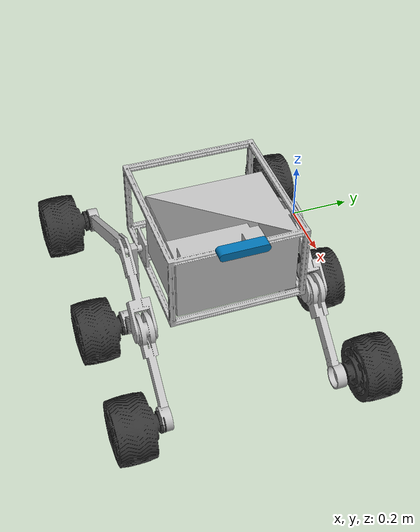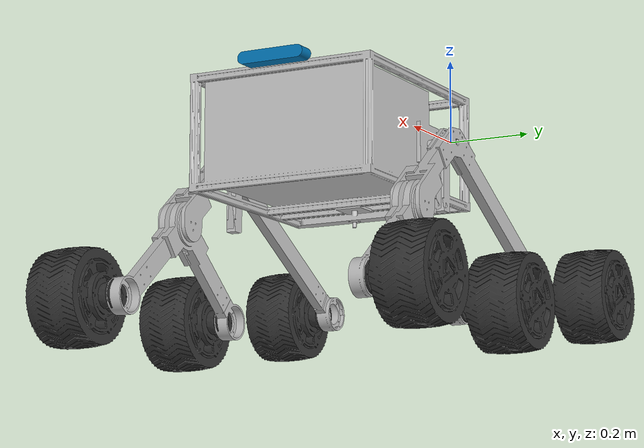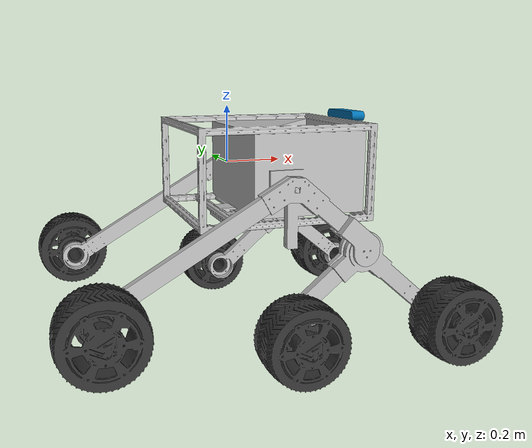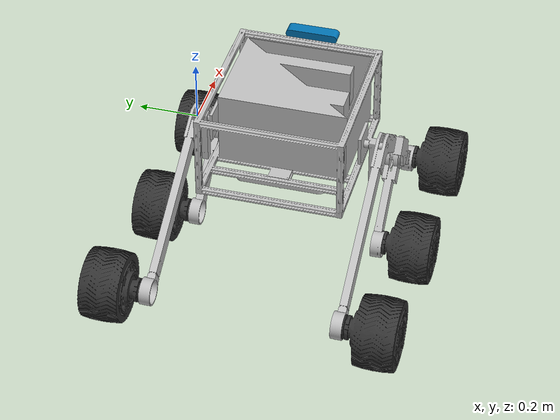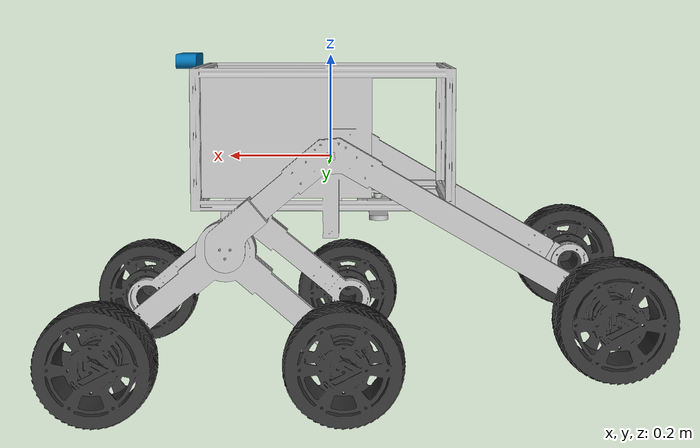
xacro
<?xml version="1.0"?>
<robot name="rover" xmlns:xacro="http://www.ros.org/wiki/xacro">

  <!-- Materials -->
  <material name="aluminum_gray">
    <color rgba="0.75 0.75 0.75 1.0"/>
  </material>
  <material name="off_black">
    <color rgba="0.2 0.2 0.2 1.0"/>
  </material>

  <!-- Links -->
  <link name="back_left_wheel_link">
    <inertial>
      <origin rpy="-1.570796 -0.000001 0.000001" xyz="-0.000784 0.092012 -0.001876"/>
      <mass value="3"/>
      <inertia ixx="0.019211" ixy="0" ixz="0" iyy="0.019211" iyz="0" izz="0.02149"/>
    </inertial>
    <visual>
      <origin rpy="-1.570796 -0.000001 0.000001" xyz="-0.000784 0.092012 -0.001876"/>
      <geometry>
        <mesh filename="package://rover_description/urdf/meshes/back_left_wheel_link_visual.obj"/>
      </geometry>
      <material name="off_black"/>
    </visual>
    <collision>
      <origin rpy="-1.570796 -0.000001 0.000001" xyz="-0.000784 0.092012 -0.001876"/>
      <geometry>
        <cylinder length="0.184024" radius="0.119695"/>
      </geometry>
    </collision>
  </link>

  <link name="back_right_wheel_link">
    <inertial>
      <origin rpy="1.570796 0 0" xyz="-0.000784 -0.092012 0.001876"/>
      <mass value="3"/>
      <inertia ixx="0.019211" ixy="0" ixz="0" iyy="0.019211" iyz="0" izz="0.02149"/>
    </inertial>
    <visual>
      <origin rpy="1.570796 0 0" xyz="-0.000784 -0.092012 0.001876"/>
      <geometry>
        <mesh filename="package://rover_description/urdf/meshes/back_right_wheel_link_visual.obj"/>
      </geometry>
      <material name="off_black"/>
    </visual>
    <collision>
      <origin rpy="1.570796 0 0" xyz="-0.000784 -0.092012 0.001876"/>
      <geometry>
        <cylinder length="0.184024" radius="0.119695"/>
      </geometry>
    </collision>
  </link>

  <link name="chassis_footprint">
    <inertial>
      <mass value="1"/>
      <inertia ixx="0.001" ixy="0" ixz="0" iyy="0.001" iyz="0" izz="0.001"/>
    </inertial>
  </link>

  <link name="chassis_link">
    <inertial>
      <origin rpy="0 0 0" xyz="0 0 0.120509"/>
      <mass value="10"/>
      <inertia ixx="0.299083" ixy="0" ixz="0" iyy="0.33375" iyz="0" izz="0.451333"/>
    </inertial>
    <visual>
      <origin rpy="0 0 0" xyz="0 0 0.120509"/>
      <geometry>
        <mesh filename="package://rover_description/urdf/meshes/chassis_link_visual.obj"/>
      </geometry>
      <material name="aluminum_gray"/>
    </visual>
    <collision>
      <origin rpy="0 0 0" xyz="0 0 0.120509"/>
      <geometry>
        <box size="0.54 0.5 0.33"/>
      </geometry>
    </collision>
  </link>

  <link name="front_left_wheel_link">
    <inertial>
      <origin rpy="-1.570796 0 0" xyz="-0.000784 0.092012 -0.001876"/>
      <mass value="3"/>
      <inertia ixx="0.019211" ixy="0" ixz="0" iyy="0.019211" iyz="0" izz="0.02149"/>
    </inertial>
    <visual>
      <origin rpy="-1.570796 0 0" xyz="-0.000784 0.092012 -0.001876"/>
      <geometry>
        <mesh filename="package://rover_description/urdf/meshes/front_left_wheel_link_visual.obj"/>
      </geometry>
      <material name="off_black"/>
    </visual>
    <collision>
      <origin rpy="-1.570796 0 0" xyz="-0.000784 0.092012 -0.001876"/>
      <geometry>
        <cylinder length="0.184024" radius="0.119695"/>
      </geometry>
    </collision>
  </link>

  <link name="front_right_wheel_link">
    <inertial>
      <origin rpy="1.570796 0 0" xyz="-0.000784 -0.092012 0.001876"/>
      <mass value="3"/>
      <inertia ixx="0.019211" ixy="0" ixz="0" iyy="0.019211" iyz="0" izz="0.02149"/>
    </inertial>
    <visual>
      <origin rpy="1.570796 0 0" xyz="-0.000784 -0.092012 0.001876"/>
      <geometry>
        <mesh filename="package://rover_description/urdf/meshes/front_right_wheel_link_visual.obj"/>
      </geometry>
      <material name="off_black"/>
    </visual>
    <collision>
      <origin rpy="1.570796 0 0" xyz="-0.000784 -0.092012 0.001876"/>
      <geometry>
        <cylinder length="0.184024" radius="0.119695"/>
      </geometry>
    </collision>
  </link>

  <link name="left_bogie_link">
    <inertial>
      <origin rpy="0 0 0" xyz="0.001424 0.0005 -0.093084"/>
      <mass value="5"/>
      <inertia ixx="0.833333" ixy="0" ixz="0" iyy="0.833333" iyz="0" izz="0.833333"/>
    </inertial>
    <visual>
      <origin rpy="1.570796 0 0" xyz="0.004906 0 -0.09396"/>
      <geometry>
        <mesh filename="package://rover_description/urdf/meshes/left_bogie_link_visual.obj"/>
      </geometry>
      <material name="aluminum_gray"/>
    </visual>
    <collision>
      <origin rpy="0 0 0" xyz="0.001424 0.0005 -0.093084"/>
      <geometry>
        <mesh filename="package://rover_description/urdf/meshes/left_bogie_link_collision.stl"/>
      </geometry>
    </collision>
  </link>

  <link name="left_rocker_link">
    <inertial>
      <origin rpy="0 0 0" xyz="-0.180935 -0.001197 -0.156518"/>
      <mass value="4"/>
      <inertia ixx="0.666667" ixy="0" ixz="0" iyy="0.666667" iyz="0" izz="0.666667"/>
    </inertial>
    <visual>
      <origin rpy="0 0 0" xyz="-0.17271 0 -0.157656"/>
      <geometry>
        <mesh filename="package://rover_description/urdf/meshes/left_rocker_link_visual.obj"/>
      </geometry>
      <material name="aluminum_gray"/>
    </visual>
    <collision>
      <origin rpy="0 0 0" xyz="-0.180935 -0.001197 -0.156518"/>
      <geometry>
        <mesh filename="package://rover_description/urdf/meshes/left_rocker_link_collision.stl"/>
      </geometry>
    </collision>
  </link>

  <link name="middle_left_wheel_link">
    <inertial>
      <origin rpy="-1.570796 0 0.000001" xyz="-0.000784 0.092012 -0.001876"/>
      <mass value="3"/>
      <inertia ixx="0.019211" ixy="0" ixz="0" iyy="0.019211" iyz="0" izz="0.02149"/>
    </inertial>
    <visual>
      <origin rpy="-1.570796 0 0.000001" xyz="-0.000784 0.092012 -0.001876"/>
      <geometry>
        <mesh filename="package://rover_description/urdf/meshes/middle_left_wheel_link_visual.obj"/>
      </geometry>
      <material name="off_black"/>
    </visual>
    <collision>
      <origin rpy="-1.570796 0 0.000001" xyz="-0.000784 0.092012 -0.001876"/>
      <geometry>
        <cylinder length="0.184024" radius="0.119695"/>
      </geometry>
    </collision>
  </link>

  <link name="middle_right_wheel_link">
    <inertial>
      <origin rpy="1.570796 0 0" xyz="-0.000784 -0.092012 0.001876"/>
      <mass value="3"/>
      <inertia ixx="0.019211" ixy="0" ixz="0" iyy="0.019211" iyz="0" izz="0.02149"/>
    </inertial>
    <visual>
      <origin rpy="1.570796 0 0" xyz="-0.000784 -0.092012 0.001876"/>
      <geometry>
        <mesh filename="package://rover_description/urdf/meshes/middle_right_wheel_link_visual.obj"/>
      </geometry>
      <material name="off_black"/>
    </visual>
    <collision>
      <origin rpy="1.570796 0 0" xyz="-0.000784 -0.092012 0.001876"/>
      <geometry>
        <cylinder length="0.184024" radius="0.119695"/>
      </geometry>
    </collision>
  </link>

  <link name="right_bogie_link">
    <inertial>
      <origin rpy="-1.570799 3.138344 0" xyz="-0.00177 -0.0005 -0.093474"/>
      <mass value="5"/>
      <inertia ixx="0.833333" ixy="0" ixz="0" iyy="0.833333" iyz="0" izz="0.833333"/>
    </inertial>
    <visual>
      <origin rpy="1.570794 0 -3.141593" xyz="-0.004907 0 -0.09396"/>
      <geometry>
        <mesh filename="package://rover_description/urdf/meshes/right_bogie_link_visual.obj"/>
      </geometry>
      <material name="aluminum_gray"/>
    </visual>
    <collision>
      <origin rpy="-1.570799 3.138344 0" xyz="-0.00177 -0.0005 -0.093474"/>
      <geometry>
        <mesh filename="package://rover_description/urdf/meshes/right_bogie_link_collision.stl"/>
      </geometry>
    </collision>
  </link>

  <link name="right_rocker_link">
    <inertial>
      <origin rpy="0 0 0" xyz="-0.180935 -0.001197 -0.156518"/>
      <mass value="4"/>
      <inertia ixx="0.666667" ixy="0" ixz="0" iyy="0.666667" iyz="0" izz="0.666667"/>
    </inertial>
    <visual>
      <origin rpy="0 0 0" xyz="-0.17271 0 -0.157656"/>
      <geometry>
        <mesh filename="package://rover_description/urdf/meshes/right_rocker_link_visual.obj"/>
      </geometry>
      <material name="aluminum_gray"/>
    </visual>
    <collision>
      <origin rpy="0 0 0" xyz="-0.180935 -0.001197 -0.156518"/>
      <geometry>
        <mesh filename="package://rover_description/urdf/meshes/right_rocker_link_collision.stl"/>
      </geometry>
    </collision>
  </link>

  <link name="zed_camera_link">
    <inertial>
      <origin rpy="0 -1.570796 0" xyz="0.02155 0 0"/>
      <mass value="0.229"/>
      <inertia ixx="0.000622" ixy="0" ixz="0" iyy="0.000053" iyz="0" izz="0.000604"/>
    </inertial>
    <visual>
      <origin rpy="0 0 0" xyz="0.02155 0 0"/>
      <geometry>
        <mesh filename="package://rover_description/urdf/meshes/zed_camera_link_visual.stl"/>
      </geometry>
    </visual>
    <collision>
      <origin rpy="0 -1.570796 0" xyz="0.02155 0 0"/>
      <geometry>
        <box size="0.0303 0.1753 0.0431"/>
      </geometry>
    </collision>
  </link>

  <link name="zed_camera_optical_frame"/>

  <!-- Joints -->
  <joint name="back_left_wheel_link_joint" type="continuous">
    <origin rpy="0 0 0" xyz="-0.550766 0.0235 -0.305642"/>
    <parent link="left_rocker_link"/>
    <child link="back_left_wheel_link"/>
    <axis xyz="0 1 0"/>
    <limit effort="12" lower="0" upper="0" velocity="15"/>
    <dynamics damping="1.0" friction="1.5"/>
  </joint>

  <joint name="back_right_wheel_link_joint" type="continuous">
    <origin rpy="0 0 0" xyz="-0.55172 -0.0135 -0.306193"/>
    <parent link="right_rocker_link"/>
    <child link="back_right_wheel_link"/>
    <axis xyz="0 1 0"/>
    <limit effort="12" lower="0" upper="0" velocity="15"/>
    <dynamics damping="1.0" friction="1.5"/>
  </joint>

  <joint name="chassis_link_joint" type="fixed">
    <origin rpy="0 0 0" xyz="0.017593 -0.313117 -0.118479"/>
    <parent link="chassis_footprint"/>
    <child link="chassis_link"/>
  </joint>

  <joint name="front_left_wheel_link_joint" type="continuous">
    <origin rpy="0 0 0" xyz="0.246102 0.0235 -0.202872"/>
    <parent link="left_bogie_link"/>
    <child link="front_left_wheel_link"/>
    <axis xyz="0 1 0"/>
    <limit effort="12" lower="0" upper="0" velocity="15"/>
    <dynamics damping="1.0" friction="1.5"/>
  </joint>

  <joint name="front_right_wheel_link_joint" type="continuous">
    <origin rpy="0 0 0" xyz="0.247131 -0.0135 -0.201737"/>
    <parent link="right_bogie_link"/>
    <child link="front_right_wheel_link"/>
    <axis xyz="0 1 0"/>
    <limit effort="12" lower="0" upper="0" velocity="15"/>
    <dynamics damping="1.0" friction="1.5"/>
  </joint>

  <joint name="left_bogie_link_joint" type="revolute">
    <origin rpy="-0.000001 0 0" xyz="0.210291 0 -0.190873"/>
    <parent link="left_rocker_link"/>
    <child link="left_bogie_link"/>
    <axis xyz="0 1 0"/>
    <limit effort="10" lower="-0.5236" upper="0.5236" velocity="1"/>
    <dynamics damping="0.3" friction="0.5"/>
  </joint>

  <joint name="left_rocker_link_joint" type="revolute">
    <origin rpy="0 0 0" xyz="-0.017593 0.313117 0.118479"/>
    <parent link="chassis_link"/>
    <child link="left_rocker_link"/>
    <axis xyz="0 1 0"/>
    <limit effort="10" lower="-1.570795" upper="1.570795" velocity="1"/>
    <dynamics damping="0.5" friction="1000.0"/>
  </joint>

  <joint name="middle_left_wheel_link_joint" type="continuous">
    <origin rpy="0 0 0" xyz="-0.236289 0.0235 -0.201885"/>
    <parent link="left_bogie_link"/>
    <child link="middle_left_wheel_link"/>
    <axis xyz="0 1 0"/>
    <limit effort="12" lower="0" upper="0" velocity="15"/>
    <dynamics damping="1.0" friction="1.5"/>
  </joint>

  <joint name="middle_right_wheel_link_joint" type="continuous">
    <origin rpy="0 0 0" xyz="-0.236289 -0.0135 -0.201885"/>
    <parent link="right_bogie_link"/>
    <child link="middle_right_wheel_link"/>
    <axis xyz="0 1 0"/>
    <limit effort="12" lower="0" upper="0" velocity="15"/>
    <dynamics damping="1.0" friction="1.5"/>
  </joint>

  <joint name="right_bogie_link_joint" type="revolute">
    <origin rpy="0 0 0" xyz="0.210291 0 -0.190873"/>
    <parent link="right_rocker_link"/>
    <child link="right_bogie_link"/>
    <axis xyz="0 1 0"/>
    <limit effort="10" lower="-0.5236" upper="0.5236" velocity="1"/>
    <dynamics damping="0.3" friction="0.5"/>
  </joint>

  <joint name="right_rocker_link_joint" type="revolute">
    <origin rpy="0 0 0" xyz="-0.018794 -0.317419 0.125316"/>
    <parent link="chassis_link"/>
    <child link="right_rocker_link"/>
    <axis xyz="0 1 0"/>
    <limit effort="10" lower="-3.141593" upper="3.141593" velocity="1"/>
    <dynamics damping="0.5" friction="1000.0"/>
  </joint>

  <joint name="zed_camera_link_joint" type="fixed">
    <origin rpy="0 0 0" xyz="0.27 0 0.30"/>
    <parent link="chassis_link"/>
    <child link="zed_camera_link"/>
  </joint>

  <joint name="zed_camera_optical_frame_joint" type="fixed">
    <origin rpy="-1.5707963267948966 0.0 -1.5707963267948966" xyz="0.0 0.0 0.0"/>
    <parent link="zed_camera_link"/>
    <child link="zed_camera_optical_frame"/>
  </joint>

  <!-- Gazebo Plugins -->
  <gazebo>
    <plugin filename="gz-sim-joint-state-publisher-system" name="gz::sim::systems::JointStatePublisher">
      <topic>joint_states</topic>
    </plugin>
  </gazebo>

  <gazebo>
    <plugin filename="gz-sim-diff-drive-system" name="gz::sim::systems::DiffDrive">
      <left_joint>front_left_wheel_link_joint</left_joint>
      <left_joint>middle_left_wheel_link_joint</left_joint>
      <left_joint>back_left_wheel_link_joint</left_joint>
      <right_joint>front_right_wheel_link_joint</right_joint>
      <right_joint>middle_right_wheel_link_joint</right_joint>
      <right_joint>back_right_wheel_link_joint</right_joint>
      <wheel_separation>0.63</wheel_separation>
      <wheel_radius>0.119695</wheel_radius>
      <max_linear_acceleration>1.0</max_linear_acceleration>
      <max_angular_acceleration>2.0</max_angular_acceleration>
      <topic>cmd_vel</topic>
      <odom_topic>odom</odom_topic>
      <tf_topic>tf</tf_topic>
      <frame_id>odom</frame_id>
      <child_frame_id>chassis_footprint</child_frame_id>
      <odom_publish_frequency>30</odom_publish_frequency>
    </plugin>
  </gazebo>

  <gazebo>
    <plugin filename="gz-sim-sensors-system" name="gz::sim::systems::Sensors">
      <render_engine>ogre2</render_engine>
    </plugin>
  </gazebo>

  <!-- Gazebo Sensors (Attached directly to zed_camera_link) -->
  <gazebo reference="zed_camera_link">
    <visual>
      <material>
        <ambient>0.1 0.1 0.1 1.0</ambient>
        <diffuse>0.15 0.15 0.15 1.0</diffuse>
        <specular>0.4 0.4 0.4 1.0</specular>
      </material>
    </visual>

    <!-- RGB Camera Sensor -->
    <sensor name="zed_rgb_camera" type="camera">
      <always_on>true</always_on>
      <update_rate>15</update_rate>
      <visualize>true</visualize>
      <topic>/zed/image_raw</topic>
      <gz_frame_id>zed_camera_optical_frame</gz_frame_id>
      <camera>
        <horizontal_fov>1.919862</horizontal_fov>
        <image>
          <width>1280</width>
          <height>720</height>
          <format>R8G8B8</format>
        </image>
        <clip>
          <near>0.2</near>
          <far>20</far>
        </clip>
      </camera>
    </sensor>

    <!-- IMU Sensor -->
    <sensor name="zed_imu_sensor" type="imu">
      <always_on>true</always_on>
      <update_rate>100</update_rate>
      <visualize>false</visualize>
      <topic>/zed/imu/data</topic>
      <gz_frame_id>zed_camera_link</gz_frame_id>
      <imu>
        <angular_velocity>
          <x><noise type="gaussian"><mean>0.0</mean><stddev>2e-4</stddev></noise></x>
          <y><noise type="gaussian"><mean>0.0</mean><stddev>2e-4</stddev></noise></y>
          <z><noise type="gaussian"><mean>0.0</mean><stddev>2e-4</stddev></noise></z>
        </angular_velocity>
        <linear_acceleration>
          <x><noise type="gaussian"><mean>0.0</mean><stddev>1.7e-2</stddev></noise></x>
          <y><noise type="gaussian"><mean>0.0</mean><stddev>1.7e-2</stddev></noise></y>
          <z><noise type="gaussian"><mean>0.0</mean><stddev>1.7e-2</stddev></noise></z>
        </linear_acceleration>
      </imu>
    </sensor>
  </gazebo>

  <!-- Materials for Gazebo Sim Rendering -->
  <gazebo reference="chassis_link">
    <visual><material><ambient>0.6 0.6 0.6 1</ambient><diffuse>0.75 0.75 0.75 1</diffuse><specular>0.8 0.8 0.8 1</specular></material></visual>
  </gazebo>
  <gazebo reference="left_rocker_link">
    <visual><material><ambient>0.6 0.6 0.6 1</ambient><diffuse>0.75 0.75 0.75 1</diffuse><specular>0.8 0.8 0.8 1</specular></material></visual>
  </gazebo>
  <gazebo reference="right_rocker_link">
    <visual><material><ambient>0.6 0.6 0.6 1</ambient><diffuse>0.75 0.75 0.75 1</diffuse><specular>0.8 0.8 0.8 1</specular></material></visual>
  </gazebo>
  <gazebo reference="left_bogie_link">
    <visual><material><ambient>0.6 0.6 0.6 1</ambient><diffuse>0.75 0.75 0.75 1</diffuse><specular>0.8 0.8 0.8 1</specular></material></visual>
  </gazebo>
  <gazebo reference="right_bogie_link">
    <visual><material><ambient>0.6 0.6 0.6 1</ambient><diffuse>0.75 0.75 0.75 1</diffuse><specular>0.8 0.8 0.8 1</specular></material></visual>
  </gazebo>
  <gazebo reference="back_left_wheel_link">
    <visual><material><ambient>0.15 0.15 0.15 1</ambient><diffuse>0.2 0.2 0.2 1</diffuse><specular>0.1 0.1 0.1 1</specular></material></visual>
  </gazebo>
  <gazebo reference="back_right_wheel_link">
    <visual><material><ambient>0.15 0.15 0.15 1</ambient><diffuse>0.2 0.2 0.2 1</diffuse><specular>0.1 0.1 0.1 1</specular></material></visual>
  </gazebo>
  <gazebo reference="front_left_wheel_link">
    <visual><material><ambient>0.15 0.15 0.15 1</ambient><diffuse>0.2 0.2 0.2 1</diffuse><specular>0.1 0.1 0.1 1</specular></material></visual>
  </gazebo>
  <gazebo reference="front_right_wheel_link">
    <visual><material><ambient>0.15 0.15 0.15 1</ambient><diffuse>0.2 0.2 0.2 1</diffuse><specular>0.1 0.1 0.1 1</specular></material></visual>
  </gazebo>
  <gazebo reference="middle_left_wheel_link">
    <visual><material><ambient>0.15 0.15 0.15 1</ambient><diffuse>0.2 0.2 0.2 1</diffuse><specular>0.1 0.1 0.1 1</specular></material></visual>
  </gazebo>
  <gazebo reference="middle_right_wheel_link">
    <visual><material><ambient>0.15 0.15 0.15 1</ambient><diffuse>0.2 0.2 0.2 1</diffuse><specular>0.1 0.1 0.1 1</specular></material></visual>
  </gazebo>

</robot>
